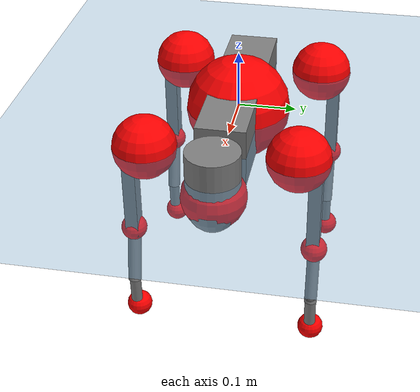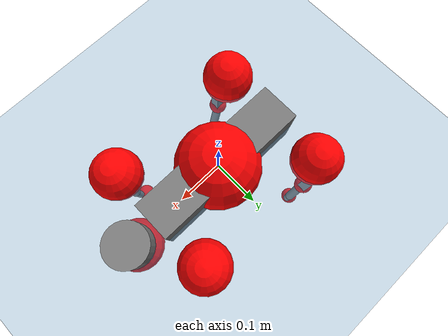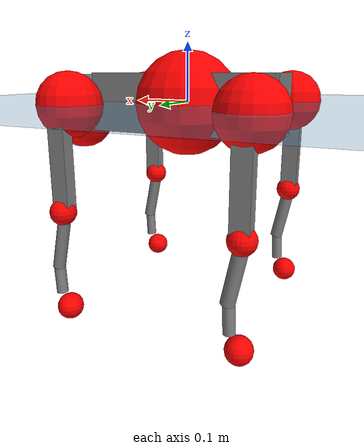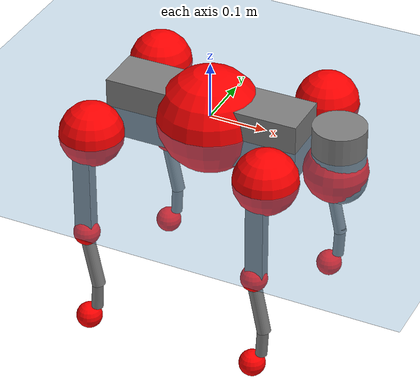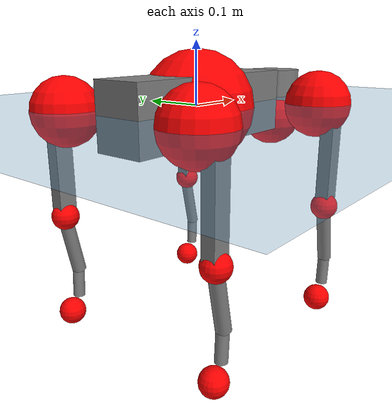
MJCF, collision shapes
<mujoco model="go2">
  <compiler angle="radian" assetdir="assets" balanceinertia="true" inertiafromgeom="false"/>

  <option timestep="0.005" density="1.2" viscosity="2e-05"/>

  <size nkey="1"/>

  <visual>
    <quality shadowsize="8192"/>
    <map shadowclip="0.5"/>
  </visual>

  <default>
    <default class="/">
      <geom contype="0" conaffinity="0" group="1" solref="-1000 -80"/>
      <site size="0.01 0.005 0.005" group="5"/>
      <general forcelimited="true" biastype="affine" gainprm="20" biasprm="0 -20 -0.5"/>
      <default class="go2">
        <joint armature="0.01" damping="0.01" frictionloss="0.2"/>
        <geom condim="1" margin="0.001"/>
        <default class="visual">
          <geom type="mesh" group="2"/>
        </default>
        <default class="collision">
          <geom group="3"/>
          <default class="foot">
            <geom size="0.022 0 0" condim="6" priority="1" friction="0.8 0.02 0.01" solimp="0.015 1 0.022"/>
          </default>
        </default>
        <default class="reward_collision_sphere">
          <geom group="5" rgba="1 0 0 1"/>
        </default>
      </default>
    </default>
  </default>

  <asset>
    <texture type="skybox" colorspace="auto" name="//unnamed_texture_0" builtin="gradient" rgb1="0.95 0.95 0.95" rgb2="0.95 0.95 0.95" width="100" height="600"/>
    <texture type="2d" colorspace="auto" name="texplane" builtin="checker" rgb1="0.345 0.575 0.748" rgb2="0.345 0.575 0.748" markrgb="1 1 1" width="512" height="512"/>
    <material name="MatPlane" class="/" texture="texplane" texuniform="true" texrepeat="2 2" specular="0.9"/>
    <material name="metal" class="/" rgba="0.9 0.95 0.95 1"/>
    <material name="black" class="/" rgba="0 0 0 1"/>
    <material name="white" class="/"/>
    <material name="gray" class="/" rgba="0.671705 0.692426 0.77427 1"/>
    <mesh name="base_0" class="/" file="base_0.obj"/>
    <mesh name="base_1" class="/" file="base_1.obj"/>
    <mesh name="base_2" class="/" file="base_2.obj"/>
    <mesh name="base_3" class="/" file="base_3.obj"/>
    <mesh name="base_4" class="/" file="base_4.obj"/>
    <mesh name="hip_0" class="/" file="hip_0.obj"/>
    <mesh name="hip_1" class="/" file="hip_1.obj"/>
    <mesh name="thigh_0" class="/" file="thigh_0.obj"/>
    <mesh name="thigh_1" class="/" file="thigh_1.obj"/>
    <mesh name="thigh_mirror_0" class="/" file="thigh_mirror_0.obj"/>
    <mesh name="thigh_mirror_1" class="/" file="thigh_mirror_1.obj"/>
    <mesh name="calf_0" class="/" file="calf_0.obj"/>
    <mesh name="calf_1" class="/" file="calf_1.obj"/>
    <mesh name="calf_mirror_0" class="/" file="calf_mirror_0.obj"/>
    <mesh name="calf_mirror_1" class="/" file="calf_mirror_1.obj"/>
    <mesh name="foot" class="/" file="foot.obj"/>
  </asset>

  <worldbody>
    <geom name="floor" class="/" size="100 100 0.125" type="plane" group="0" material="MatPlane"/>
    <light name="toplight_shadow" class="/" pos="0 0 5" dir="0.0990148 0.0990148 -0.990148" type="directional" ambient="0.04 0.04 0.04" diffuse="0.55 0.55 0.55" specular="0.12 0.12 0.12"/>
    <light name="toplight_fill" class="/" pos="0 0 5" dir="0.0990148 0.0990148 -0.990148" type="directional" castshadow="false" ambient="0.04 0.04 0.04" diffuse="0.3 0.3 0.3" specular="0.08 0.08 0.08"/>
    <body name="trunk" childclass="go2" pos="0.000845688 -0.000860597 -0.00264384" quat="1 0.000374867 -0.000164761 -1.644e-05">
      <inertial pos="0.015214 0.00310041 -0.00405289" quat="0.00467831 0.714857 0.00485205 0.699238" mass="5.47294" diaginertia="0.0401411 0.165363 0.00992614"/>
      <joint name="//unnamed_joint_0" type="free" armature="0" damping="0" frictionloss="0"/>
      <geom name="//unnamed_geom_1" class="visual" material="black" mesh="base_0"/>
      <geom name="//unnamed_geom_2" class="visual" material="black" mesh="base_1"/>
      <geom name="//unnamed_geom_3" class="visual" material="black" mesh="base_2"/>
      <geom name="//unnamed_geom_4" class="visual" material="white" mesh="base_3"/>
      <geom name="//unnamed_geom_5" class="visual" material="gray" mesh="base_4"/>
      <geom name="trunk_1" class="collision" size="0.17201 0.0427511 0.0521243" type="box"/>
      <geom name="trunk_2" class="collision" size="0.0457231 0.0411508" pos="0.230918 0 0.0083063" type="cylinder"/>
      <geom name="trunk_3" class="collision" size="0.0429797" pos="0.2374 0 -0.0498378"/>
      <geom name="//unnamed_geom_9" class="reward_collision_sphere" size="0.0914462"/>
      <geom name="//unnamed_geom_10" class="reward_collision_sphere" size="0.0548677" pos="0.226867 0 -0.0373783"/>
      <site name="imu" pos="-0.0260497 0.000927778 0.0359776" size="0.00914462"/>
      <camera name="track" pos="0 -2.20504 0" quat="0.707107 0.707107 0 0" mode="trackcom"/>
      <camera name="ego_camera" pos="0.252794 0 0.0373783" quat="-0.5 -0.5 0.5 0.5"/>
      <body name="FL_hip" pos="0.155555 0.0503819 0.000738628" quat="1 -0.000180973 0.000336183 -0.000287986">
        <inertial pos="-0.00367736 0.00291486 -3.18056e-05" quat="0.506583 0.482806 0.503523 0.506692" mass="0.529499" diaginertia="0.000316261 0.000971485 0.000195452"/>
        <joint name="FL_hip_joint" pos="0 0 0" axis="0.999975 5.17044e-05 0.00702033" range="-1.08743 1.00718" armature="0.00922929" damping="0.0226176" frictionloss="0.191006"/>
        <geom name="//unnamed_geom_11" class="visual" material="metal" mesh="hip_0"/>
        <geom name="//unnamed_geom_12" class="visual" material="gray" mesh="hip_1"/>
        <geom name="//unnamed_geom_13" class="collision" size="0.0420653 0.0182892" pos="0 0.0882014 0" quat="0.707107 0.707107 0 0" type="cylinder"/>
        <geom name="//unnamed_geom_14" class="reward_collision_sphere" size="0.0548677" pos="0 0.0771763 0"/>
        <body name="FL_thigh" pos="-0.000448071 0.107074 0.00134656" quat="0.999999 0.000259066 -0.00145763 0.000896072">
          <inertial pos="-0.00311454 -0.0281376 -0.0285059" quat="0.835523 0.0839242 -0.025752 0.542398" mass="0.891459" diaginertia="0.00209211 0.00906554 0.000342885"/>
          <joint name="FL_thigh_joint" pos="0 0 0" axis="0.00343744 0.999993 0.00154996" stiffness="0.011105" range="-1.58567 3.53329" armature="0.00775595" damping="0.0205017" frictionloss="0.167389"/>
          <geom name="//unnamed_geom_15" class="visual" material="metal" mesh="thigh_0"/>
          <geom name="//unnamed_geom_16" class="visual" material="gray" mesh="thigh_1"/>
          <geom name="//unnamed_geom_17" class="collision" size="0.0973902 0.0112022 0.0155459" pos="0 0 -0.0884621" quat="0.707107 0 0.707107 0" type="box"/>
          <body name="FL_calf" pos="0.0023837 0.00182599 -0.179262" quat="1 9.16511e-05 -1.90387e-05 0.000144868">
            <inertial pos="0.0065961 -0.00192391 -0.116868" quat="0.719549 0.00406398 -0.00388837 0.694419" mass="0.187827" diaginertia="0.000515329 0.00228632 2.04304e-05"/>
            <joint name="FL_calf_joint" pos="0 0 0" axis="-0.00314181 0.999989 0.00358026" stiffness="0.00118765" range="-2.79351 -0.84671" armature="0.00826764" damping="0.0119784" frictionloss="0.207128"/>
            <geom name="//unnamed_geom_18" class="visual" material="gray" mesh="calf_0"/>
            <geom name="//unnamed_geom_19" class="visual" material="black" mesh="calf_1"/>
            <geom name="FL_calf0" class="collision" size="0.0109735 0.0548677" pos="0.00648191 0 -0.0498378" quat="0.994493 0 -0.104807 0" type="cylinder"/>
            <geom name="//unnamed_geom_21" class="collision" size="0.0100591 0.02972" pos="0.0162048 0 -0.122933" quat="0.999688 0 0.0249974 0" type="cylinder"/>
            <geom name="//unnamed_geom_22" class="visual" pos="0 0 -0.176924" quat="1 0 0 0" material="black" mesh="foot"/>
            <geom name="FL_foot" class="foot" size="0.0173019" pos="-0.00162048 0 -0.176924"/>
            <geom name="//unnamed_geom_24" class="reward_collision_sphere" size="0.0228615"/>
            <geom name="//unnamed_geom_25" class="reward_collision_sphere" size="0.0228615" pos="-0.00162048 0 -0.176924"/>
            <site name="FL_foot" class="foot" pos="-0.00162048 0 -0.176924" size="0.00914462"/>
          </body>
        </body>
      </body>
      <body name="FR_hip" pos="0.159828 -0.0529462 0.000224636" quat="0.999999 7.09466e-05 -0.000241378 0.00110317">
        <inertial pos="-0.0055035 0.000552641 -0.00298552" quat="0.490638 0.506549 0.502564 0.500112" mass="0.497171" diaginertia="0.000303776 0.000970207 0.000194083"/>
        <joint name="FR_hip_joint" pos="0 0 0" axis="0.999974 -0.00333042 -0.00639054" stiffness="0.0218796" range="-1.02197 1.02757" armature="0.00810256" damping="0.0219335" frictionloss="0.206934"/>
        <geom name="//unnamed_geom_26" class="visual" pos="0 2.36858e-09 1.01593e-07" quat="4.63268e-05 1 0 0" material="metal" mesh="hip_0"/>
        <geom name="//unnamed_geom_27" class="visual" pos="0 3.83975e-09 -2.51279e-07" quat="4.63268e-05 1 0 0" material="gray" mesh="hip_1"/>
        <geom name="//unnamed_geom_28" class="collision" size="0.0420653 0.0182892" pos="0 -0.0882014 0" quat="0.707107 0.707107 0 0" type="cylinder"/>
        <geom name="//unnamed_geom_29" class="reward_collision_sphere" size="0.0548677" pos="0 -0.0771763 0"/>
        <body name="FR_thigh" pos="-0.00223804 -0.105357 0.00442059" quat="1 -0.00021516 -0.000192999 -0.000131907">
          <inertial pos="-0.00104717 0.0236035 -0.0293983" quat="0.558566 -0.0246631 0.0929709 0.823864" mass="0.909529" diaginertia="0.00205436 0.00949028 0.000346619"/>
          <joint name="FR_thigh_joint" pos="0 0 0" axis="-0.00025115 -1 1.24763e-05" range="-3.48387 1.61844" armature="0.00983597" damping="6.03644e-05" frictionloss="0.171507"/>
          <geom name="//unnamed_geom_30" class="visual" material="metal" mesh="thigh_mirror_0"/>
          <geom name="//unnamed_geom_31" class="visual" material="gray" mesh="thigh_mirror_1"/>
          <geom name="//unnamed_geom_32" class="collision" size="0.0973902 0.0112022 0.0155459" pos="0 0 -0.0884621" quat="0.707107 0 0.707107 0" type="box"/>
          <body name="FR_calf" pos="-0.0030823 -0.000536904 -0.177835" quat="0.999999 -0.000438689 7.90613e-05 0.00117038">
            <inertial pos="0.00390553 0.00161793 -0.118322" quat="0.707121 0.00187192 -0.00732505 0.707052" mass="0.176865" diaginertia="0.000482895 0.00229952 1.979e-05"/>
            <joint name="FR_calf_joint" pos="0 0 0" axis="0.011207 -0.999931 0.00361711" range="0.89005 2.77171" armature="0.00837529" damping="0.0172341" frictionloss="0.159418"/>
            <geom name="//unnamed_geom_33" class="visual" material="gray" mesh="calf_mirror_0"/>
            <geom name="//unnamed_geom_34" class="visual" material="black" mesh="calf_mirror_1"/>
            <geom name="FR_calf0" class="collision" size="0.011888 0.0548677" pos="0.00810238 0 -0.0498378" quat="0.995004 0 -0.0998334 0" type="cylinder"/>
            <geom name="//unnamed_geom_36" class="collision" size="0.0100591 0.02972" pos="0.0162048 0 -0.122933" quat="0.999688 0 0.0249974 0" type="cylinder"/>
            <geom name="//unnamed_geom_37" class="visual" pos="0 0 -0.176924" quat="1 0 0 0" material="black" mesh="foot"/>
            <geom name="FR_foot" class="foot" size="0.022763" pos="-0.00162048 0 -0.176924"/>
            <geom name="//unnamed_geom_39" class="reward_collision_sphere" size="0.0228615"/>
            <geom name="//unnamed_geom_40" class="reward_collision_sphere" size="0.0228615" pos="-0.00162048 0 -0.176924"/>
            <site name="FR_foot" class="foot" pos="-0.00162048 0 -0.176924" size="0.00914462"/>
          </body>
        </body>
      </body>
      <body name="RL_hip" pos="-0.157778 0.0530616 -0.002042" quat="1 -0.000379756 0.000277122 0.000384188">
        <inertial pos="0.0065158 0.000211507 0.00118694" quat="0.49557 0.502585 0.496524 0.505256" mass="0.524996" diaginertia="0.000290587 0.000916293 0.000187543"/>
        <joint name="RL_hip_joint" pos="0 0 0" axis="-0.999654 -0.013371 0.0226716" range="-1.06966 0.992538" armature="0.00803657" damping="0.0139245" frictionloss="0.182051"/>
        <geom name="//unnamed_geom_41" class="visual" pos="1.77643e-10 0 3.48221e-08" quat="4.63268e-05 0 1 0" material="metal" mesh="hip_0"/>
        <geom name="//unnamed_geom_42" class="visual" pos="2.8798e-10 0 3.08823e-08" quat="4.63268e-05 0 1 0" material="gray" mesh="hip_1"/>
        <geom name="//unnamed_geom_43" class="collision" size="0.0420653 0.0182892" pos="0 0.0882014 0" quat="0.707107 0.707107 0 0" type="cylinder"/>
        <geom name="//unnamed_geom_44" class="reward_collision_sphere" size="0.0548677" pos="0 0.0771763 0"/>
        <body name="RL_thigh" pos="0.00070641 0.102496 0.0023464" quat="0.999999 0.000865658 -0.000315289 -0.000554782">
          <inertial pos="-0.00368605 -0.0287293 -0.0246392" quat="0.829586 0.0848531 -0.0201222 0.551527" mass="0.908613" diaginertia="0.00202093 0.00965485 0.000339051"/>
          <joint name="RL_thigh_joint" pos="0 0 0" axis="0.00362647 0.999832 0.017989" range="-0.553411 4.54272" armature="0.0095964" damping="0.00666765" frictionloss="0.167671"/>
          <geom name="//unnamed_geom_45" class="visual" material="metal" mesh="thigh_0"/>
          <geom name="//unnamed_geom_46" class="visual" material="gray" mesh="thigh_1"/>
          <geom name="//unnamed_geom_47" class="collision" size="0.0973902 0.0112022 0.0155459" pos="0 0 -0.0884621" quat="0.707107 0 0.707107 0" type="box"/>
          <body name="RL_calf" pos="-0.00115303 -0.00178375 -0.177457" quat="1 0.00013047 -0.000919391 -0.000299602">
            <inertial pos="0.00432285 -0.00147372 -0.118449" quat="0.709572 0.000900647 -0.00532696 0.704613" mass="0.182842" diaginertia="0.000530188 0.00243461 2.15767e-05"/>
            <joint name="RL_calf_joint" pos="0 0 0" axis="0.00153358 0.99999 -0.00421967" range="-2.78528 -0.857619" armature="0.00754887" damping="0.00748501" frictionloss="0.173044"/>
            <geom name="//unnamed_geom_48" class="visual" material="gray" mesh="calf_0"/>
            <geom name="//unnamed_geom_49" class="visual" material="black" mesh="calf_1"/>
            <geom name="RL_calf0" class="collision" size="0.011888 0.0548677" pos="0.00810238 0 -0.0498378" quat="0.995004 0 -0.0998334 0" type="cylinder"/>
            <geom name="//unnamed_geom_51" class="collision" size="0.0100591 0.02972" pos="0.0162048 0 -0.122933" quat="0.999688 0 0.0249974 0" type="cylinder"/>
            <geom name="//unnamed_geom_52" class="visual" pos="0 0 -0.176924" quat="1 0 0 0" material="black" mesh="foot"/>
            <geom name="RL_foot" class="foot" size="0.0199794" pos="-0.00162048 0 -0.176924"/>
            <geom name="//unnamed_geom_54" class="reward_collision_sphere" size="0.0228615"/>
            <geom name="//unnamed_geom_55" class="reward_collision_sphere" size="0.0228615" pos="-0.00162048 0 -0.176924"/>
            <site name="RL_foot" class="foot" pos="-0.00162048 0 -0.176924" size="0.00914462"/>
          </body>
        </body>
      </body>
      <body name="RR_hip" pos="-0.153757 -0.0517122 0.00156651" quat="0.999998 -0.00162604 -0.000281968 -0.00113639">
        <inertial pos="0.00461265 -0.00463035 -0.0006741" quat="0.496945 0.499574 0.496041 0.507361" mass="0.502882" diaginertia="0.000301378 0.000977595 0.000175573"/>
        <joint name="RR_hip_joint" pos="0 0 0" axis="-0.999996 -0.00130848 0.00252953" range="-1.09115 1.06293" armature="0.00816888" damping="0.00824756" frictionloss="0.194816"/>
        <geom name="//unnamed_geom_56" class="visual" pos="-1.67524e-10 2.36858e-09 -6.67711e-08" quat="2.14617e-09 4.63268e-05 4.63268e-05 -1" material="metal" mesh="hip_0"/>
        <geom name="//unnamed_geom_57" class="visual" pos="-3.13009e-10 3.83975e-09 2.82161e-07" quat="2.14617e-09 4.63268e-05 4.63268e-05 -1" material="gray" mesh="hip_1"/>
        <geom name="//unnamed_geom_58" class="collision" size="0.0420653 0.0182892" pos="0 -0.0882014 0" quat="0.707107 0.707107 0 0" type="cylinder"/>
        <geom name="//unnamed_geom_59" class="reward_collision_sphere" size="0.0548677" pos="0 -0.0771763 0"/>
        <body name="RR_thigh" pos="-0.000763785 -0.105874 -0.00343503" quat="0.999999 0.00115807 0.000242359 9.93322e-05">
          <inertial pos="-0.00331065 0.0245866 -0.0269064" quat="0.552827 -0.0127463 0.0794459 0.829403" mass="0.9381" diaginertia="0.00210899 0.00948592 0.000353842"/>
          <joint name="RR_thigh_joint" pos="0 0 0" axis="0.00589832 -0.999983 0.000276913" range="-4.53758 0.45164" armature="0.0105898" damping="0.0042927" frictionloss="0.178316"/>
          <geom name="//unnamed_geom_60" class="visual" material="metal" mesh="thigh_mirror_0"/>
          <geom name="//unnamed_geom_61" class="visual" material="gray" mesh="thigh_mirror_1"/>
          <geom name="//unnamed_geom_62" class="collision" size="0.0973902 0.0112022 0.0155459" pos="0 0 -0.0884621" quat="0.707107 0 0.707107 0" type="box"/>
          <body name="RR_calf" pos="0.00142135 -0.00109078 -0.17517" quat="1 0.000752265 0.000405818 -9.47698e-05">
            <inertial pos="0.00332969 0.00220781 -0.117976" quat="0.703741 -0.00591745 0.00184935 0.71043" mass="0.187017" diaginertia="0.000538721 0.00245232 2.08023e-05"/>
            <joint name="RR_calf_joint" pos="0 0 0" axis="-0.000236764 -0.999998 0.00213653" stiffness="0.0083193" range="0.806462 2.76553" armature="0.00875518" damping="0.00599872" frictionloss="0.198716"/>
            <geom name="//unnamed_geom_63" class="visual" material="gray" mesh="calf_mirror_0"/>
            <geom name="//unnamed_geom_64" class="visual" material="black" mesh="calf_mirror_1"/>
            <geom name="RR_calf0" class="collision" size="0.011888 0.0548677" pos="0.00810238 0 -0.0498378" quat="0.995004 0 -0.0998334 0" type="cylinder"/>
            <geom name="//unnamed_geom_66" class="collision" size="0.0100591 0.02972" pos="0.0162048 0 -0.122933" quat="0.999688 0 0.0249974 0" type="cylinder"/>
            <geom name="//unnamed_geom_67" class="visual" pos="0 0 -0.176924" quat="1 0 0 0" material="black" mesh="foot"/>
            <geom name="RR_foot" class="foot" size="0.0170142" pos="-0.00162048 0 -0.176924"/>
            <geom name="//unnamed_geom_69" class="reward_collision_sphere" size="0.0228615"/>
            <geom name="//unnamed_geom_70" class="reward_collision_sphere" size="0.0228615" pos="-0.00162048 0 -0.176924"/>
            <site name="RR_foot" class="foot" pos="-0.00162048 0 -0.176924" size="0.00914462"/>
          </body>
        </body>
      </body>
    </body>
  </worldbody>

  <contact>
    <pair class="/" geom1="floor" geom2="FL_foot" name="//unnamed_contact_0"/>
    <pair class="/" geom1="floor" geom2="FR_foot" name="//unnamed_contact_1"/>
    <pair class="/" geom1="floor" geom2="RL_foot" name="//unnamed_contact_2"/>
    <pair class="/" geom1="floor" geom2="RR_foot" name="//unnamed_contact_3"/>
  </contact>

  <actuator>
    <general name="FL_hip" class="/" joint="FL_hip_joint" forcerange="-23.4164 23.4164" gainprm="18.4976" biasprm="0 -18.4976 -0.458955"/>
    <general name="FL_thigh" class="/" joint="FL_thigh_joint" forcerange="-22.4429 22.4429" gainprm="18.4976" biasprm="0 -18.4976 -0.458955"/>
    <general name="FL_calf" class="/" joint="FL_calf_joint" forcerange="-41.2514 41.2514" gainprm="18.4976" biasprm="0 -18.4976 -0.458955"/>
    <general name="FR_hip" class="/" joint="FR_hip_joint" forcerange="-20.0335 20.0335" gainprm="18.4976" biasprm="0 -18.4976 -0.458955"/>
    <general name="FR_thigh" class="/" joint="FR_thigh_joint" forcerange="-21.8165 21.8165" gainprm="18.4976" biasprm="0 -18.4976 -0.458955"/>
    <general name="FR_calf" class="/" joint="FR_calf_joint" forcerange="-40.9734 40.9734" gainprm="18.4976" biasprm="0 -18.4976 -0.458955"/>
    <general name="RL_hip" class="/" joint="RL_hip_joint" forcerange="-19.5926 19.5926" gainprm="18.4976" biasprm="0 -18.4976 -0.458955"/>
    <general name="RL_thigh" class="/" joint="RL_thigh_joint" forcerange="-22.2209 22.2209" gainprm="18.4976" biasprm="0 -18.4976 -0.458955"/>
    <general name="RL_calf" class="/" joint="RL_calf_joint" forcerange="-46.1154 46.1154" gainprm="18.4976" biasprm="0 -18.4976 -0.458955"/>
    <general name="RR_hip" class="/" joint="RR_hip_joint" forcerange="-19.9934 19.9934" gainprm="18.4976" biasprm="0 -18.4976 -0.458955"/>
    <general name="RR_thigh" class="/" joint="RR_thigh_joint" forcerange="-23.7146 23.7146" gainprm="18.4976" biasprm="0 -18.4976 -0.458955"/>
    <general name="RR_calf" class="/" joint="RR_calf_joint" forcerange="-38.6717 38.6717" gainprm="18.4976" biasprm="0 -18.4976 -0.458955"/>
  </actuator>

  <sensor>
    <gyro site="imu" name="imu_angular_velocity"/>
    <velocimeter site="imu" name="imu_linear_velocity"/>
    <framelinvel objtype="site" objname="FL_foot" name="FL_foot_global_linear_velocity"/>
    <framelinvel objtype="site" objname="FR_foot" name="FR_foot_global_linear_velocity"/>
    <framelinvel objtype="site" objname="RL_foot" name="RL_foot_global_linear_velocity"/>
    <framelinvel objtype="site" objname="RR_foot" name="RR_foot_global_linear_velocity"/>
  </sensor>

  <keyframe>
    <key name="home" qpos="0 0 0.325 1 0 0 0 0.1 0.8 -1.5 -0.1 -0.8 1.5 -0.1 0.8 -1.5 0.1 -0.8 1.5"/>
  </keyframe>
</mujoco>
